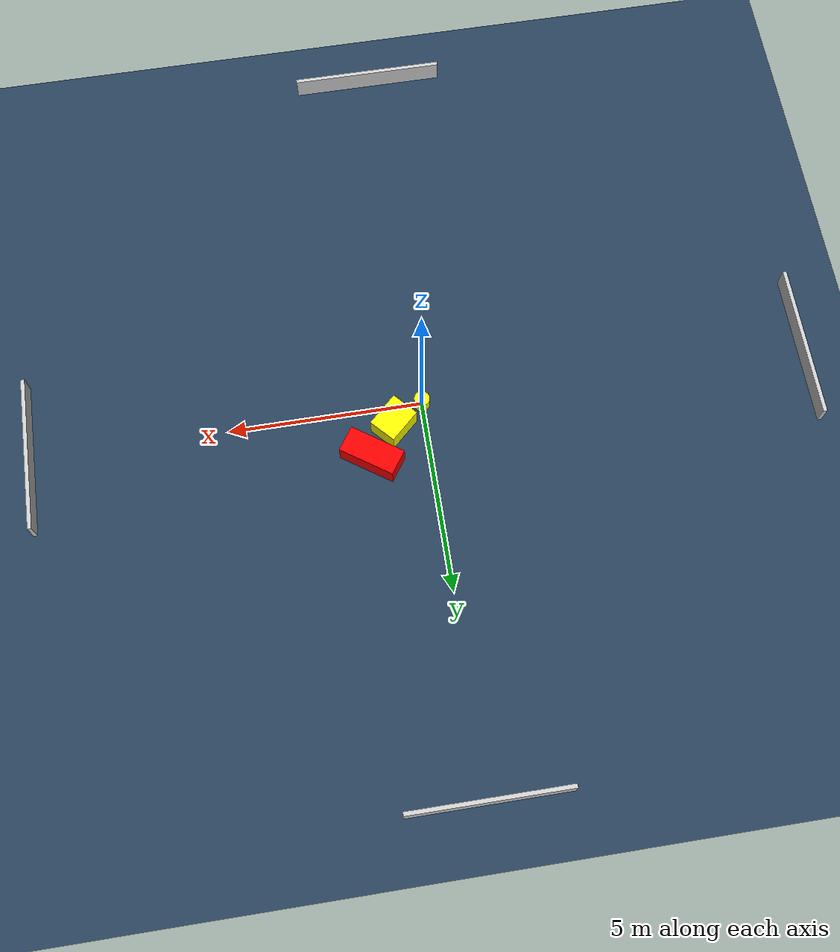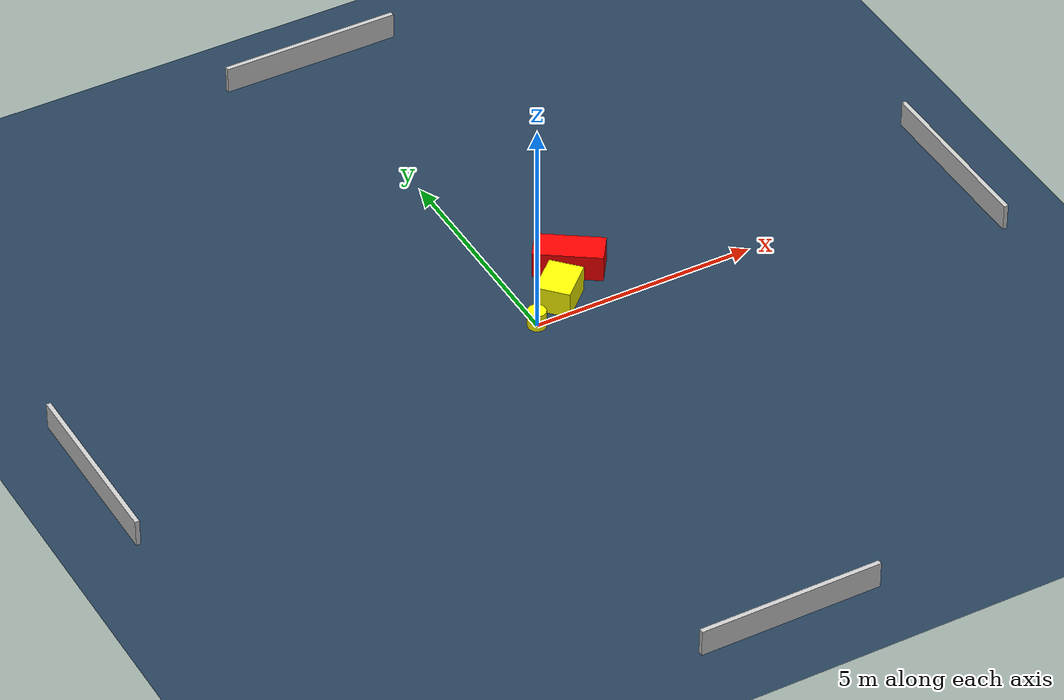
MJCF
<?xml version="1.0" ?>
<mujoco model="generated_environment">
  <option timestep="0.01" integrator="RK4" cone="elliptic"/>
  <default>
    <geom density="1"/>
  </default>
  <asset>
    <texture builtin="gradient" height="3072" name="skybox" rgb1="0.3 0.5 0.7" rgb2="0 0 0" type="skybox" width="512"/>
    <texture builtin="checker" height="300" name="groundplane" rgb1="0.2 0.3 0.4" rgb2="0.1 0.2 0.3" type="2d" width="300"/>
    <material name="groundplane" reflectance="0.2" texrepeat="5 5" texture="groundplane"/>
  </asset>
  <worldbody>
    <light dir="0 0 -1" directional="true" pos="0 0 1.5"/>
    <geom condim="3" friction="0.5 0.005 0.001" material="groundplane" name="floor" pos="0 0 0" size="0 0 0.05" type="plane"/>
    <body name="walls">
      <geom name="wall_1" condim="4" pos="-10.0 0.0 0.3" rgba="0.800000011920929 0.800000011920929 0.800000011920929 1.0" size="0.05 2.0 0.3" type="box"/>
      <geom name="wall_2" condim="4" pos="10.0 0.0 0.3" rgba="0.800000011920929 0.800000011920929 0.800000011920929 1.0" size="0.05 2.0 0.3" type="box"/>
      <geom name="wall_3" condim="4" pos="0.0 -10.0 0.3" rgba="0.800000011920929 0.800000011920929 0.800000011920929 1.0" size="2.0 0.05 0.3" type="box"/>
      <geom name="wall_4" condim="4" pos="0.0 10.0 0.3" rgba="0.800000011920929 0.800000011920929 0.800000011920929 1.0" size="2.0 0.05 0.3" type="box"/>
    </body>
    <body name="robot">
      <joint name="joint_x" type="slide" pos="0 0 0" axis="1 0 0"/>
      <joint name="joint_y" type="slide" pos="0 0 0" axis="0 1 0"/>
      <geom name="robot" type="cylinder" pos="0.0 0.0 0.2" size="0.2 0.2 0.0" mass="5.0" friction="1.0 0.005 0.0001" condim="4" rgba="1.0 1.0 0.0 1.0"/>
    </body>
    <body name="obstacle_1_movable">
      <geom name="obstacle_1_movable" condim="4" pos="0.7975026247296859 0.4860305478225033 0.3" euler="0 0 312.74628762952767" friction="0.0 0.005 0.001" rgba="1.0 1.0 0.0 1.0" size="0.37544896949738316 0.4717292281700714 0.3" type="box" mass="0.1"/>
      <joint type="free"/>
    </body>
    <body name="obstacle_2_static">
      <geom name="obstacle_2_static" condim="4" pos="1.4673806487709207 1.2708654841417228 0.3" euler="0 0 55.44038601268103" friction="0.0 0.005 0.001" rgba="1.0 0.0 0.0 1.0" size="0.33911790488534793 0.7422770673205827 0.3" type="box"/>
    </body>
  </worldbody>
  <actuator>
    <motor name="actuator_x" joint="joint_x" gear="1" ctrlrange="-1 1"/>
    <motor name="actuator_y" joint="joint_y" gear="1" ctrlrange="-1 1"/>
  </actuator>
</mujoco>
